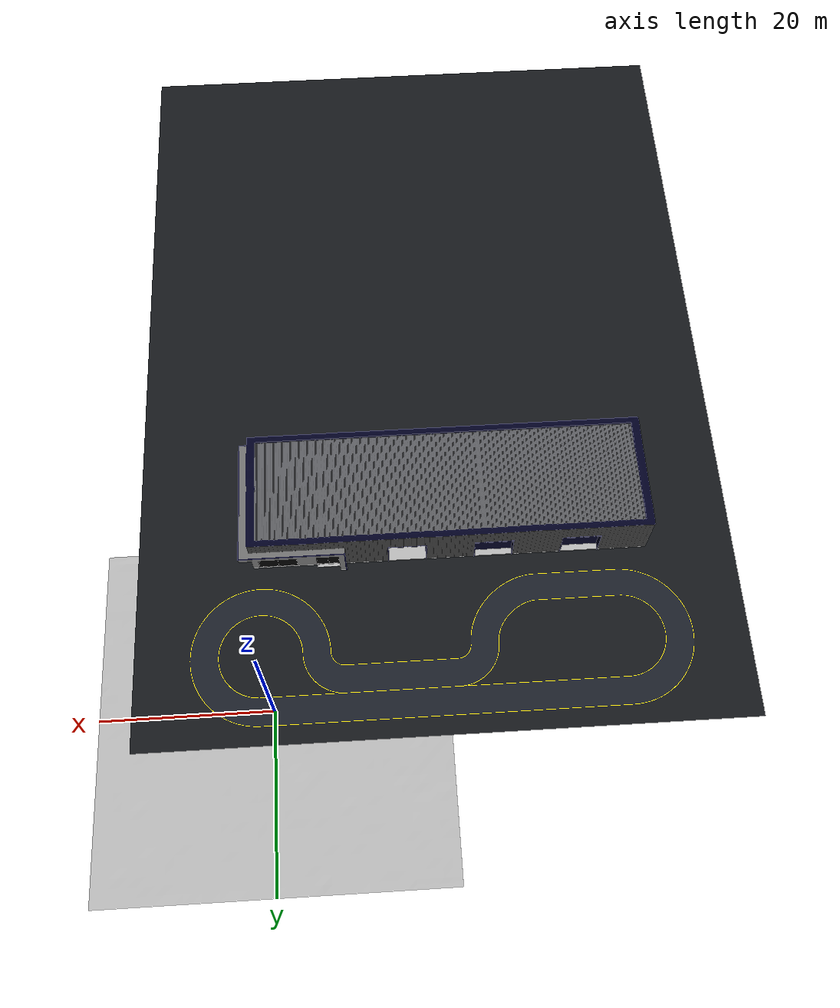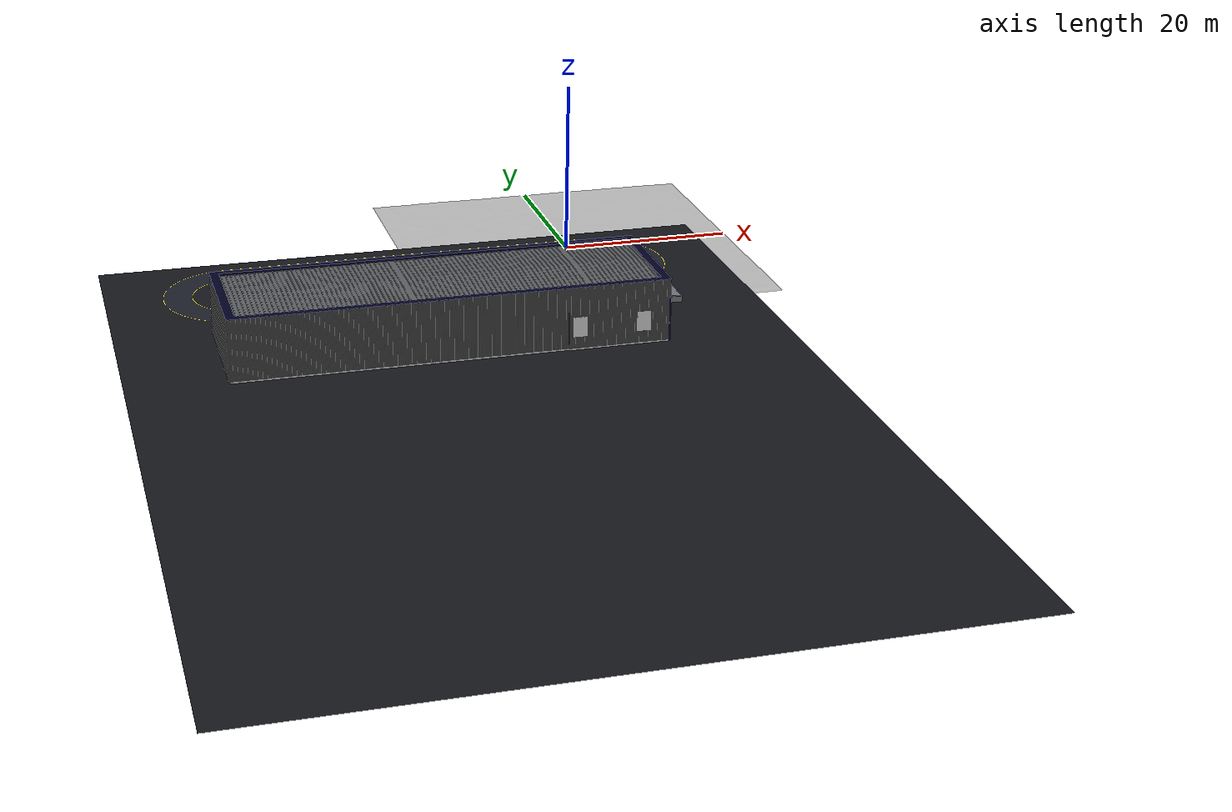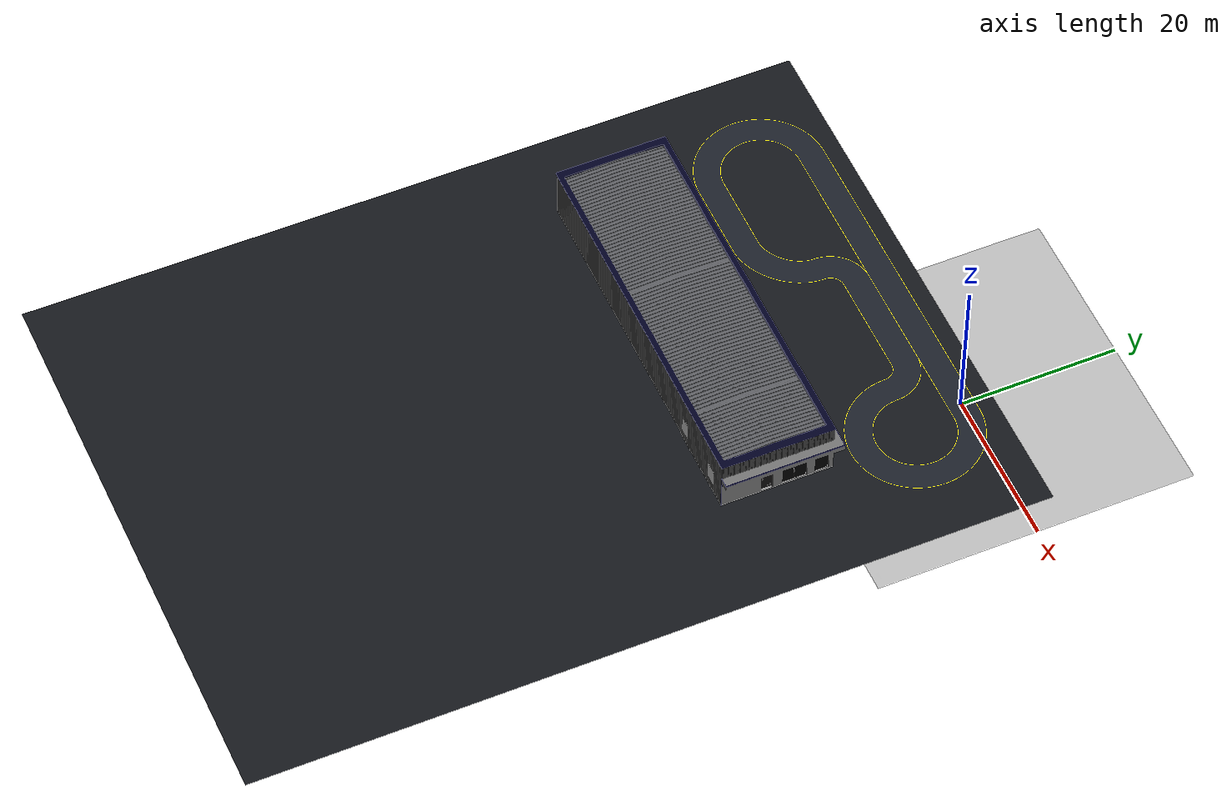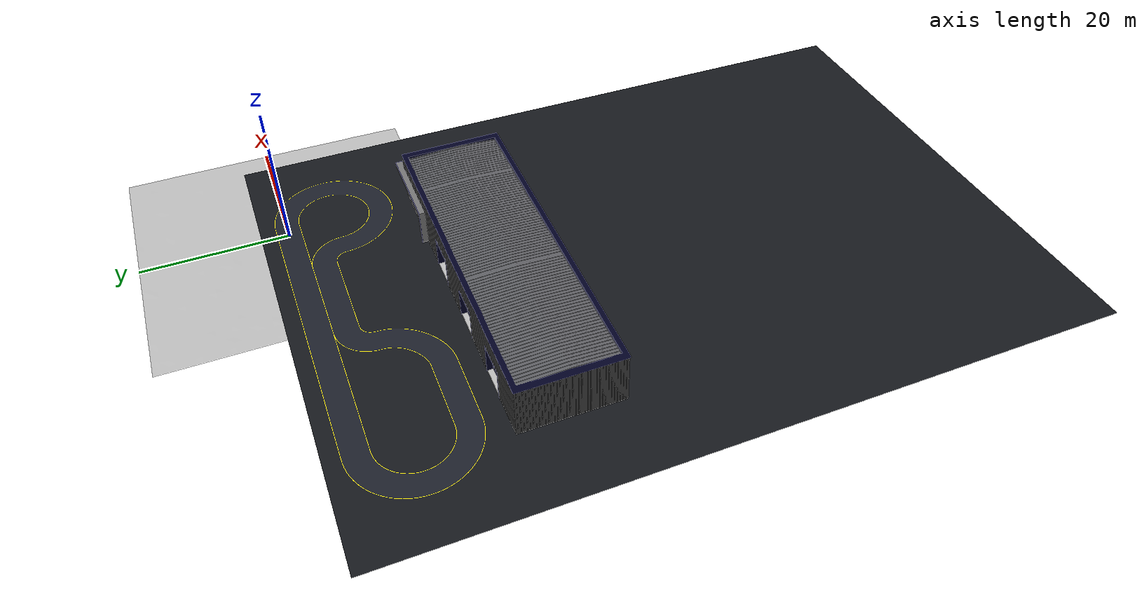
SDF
<sdf version='1.9'>
  <world name='highbay_testbed'>
    <physics name='1ms' type='ignored'>
      <max_step_size>0.001</max_step_size>
      <real_time_factor>1</real_time_factor>
      <real_time_update_rate>1000</real_time_update_rate>
    </physics>
    <plugin name='gz::sim::systems::Physics' filename='gz-sim-physics-system'/>
    <plugin name='gz::sim::systems::UserCommands' filename='gz-sim-user-commands-system'/>
    <plugin name='gz::sim::systems::SceneBroadcaster' filename='gz-sim-scene-broadcaster-system'/>
    <plugin name='gz::sim::systems::Sensors' filename='gz-sim-sensors-system'>
      <render_engine>ogre2</render_engine>
    </plugin>
    <plugin name='gz::sim::systems::Contact' filename='gz-sim-contact-system'/>
    <plugin name='gz::sim::systems::Imu' filename='gz-sim-imu-system'/>
    <spherical_coordinates>
      <surface_model>EARTH_WGS84</surface_model>
      <world_frame_orientation>ENU</world_frame_orientation>
      <latitude_deg>40.092857</latitude_deg>
      <longitude_deg>-88.235992</longitude_deg>
      <elevation>0</elevation>
      <heading_deg>0</heading_deg>
    </spherical_coordinates>
    <plugin
      filename="libignition-gazebo-navsat-system.so"
      name="ignition::gazebo::systems::NavSat">
    </plugin>
    <gravity>0 0 -9.8000000000000007</gravity>
    <magnetic_field>5.5644999999999998e-06 2.2875799999999999e-05 -4.2388400000000002e-05</magnetic_field>
    <atmosphere type='adiabatic'/>
    <scene>
      <ambient>0.4 0.4 0.4 1</ambient>
      <background>0.7 0.8 0.9 1</background>
      <shadows>true</shadows>
      <grid>false</grid>
      <origin_visual>false</origin_visual>
      <sky>false</sky>
      <fog>false</fog>
      <anisotropic_filtering>16</anisotropic_filtering>
    </scene>
    <include>
      <uri>model://highbay_track</uri>
      <pose>0 0 0.2 0 0 0</pose>
    </include>
    <include>
      <uri>model://highbay_building</uri>
      <pose>-20.00 -25.00 0.2 0 0 0</pose>
    </include>
    <include>
      <uri>model://grass</uri>
      <pose>0 0 0 0 0 0</pose>
    </include>
    <light name='sun' type='directional'>
      <pose>0 0 10 0 0 0</pose>
      <cast_shadows>true</cast_shadows>
      <intensity>1</intensity>
      <direction>-0.5 0.10000000000000001 -0.90000000000000002</direction>
      <diffuse>0.800000012 0.800000012 0.800000012 1</diffuse>
      <specular>0.200000003 0.200000003 0.200000003 1</specular>
      <attenuation>
        <range>1000</range>
        <linear>0.0099999997764825821</linear>
        <constant>0.89999997615814209</constant>
        <quadratic>0.0010000000474974513</quadratic>
      </attenuation>
      <spot>
        <inner_angle>0</inner_angle>
        <outer_angle>0</outer_angle>
        <falloff>0</falloff>
      </spot>
    </light>
  </world>
</sdf>

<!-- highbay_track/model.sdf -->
<sdf version="1.9">
  <model name="highbay_track">
    <static>true</static>

    <link name="link">
      <visual name="visual">
        <geometry>
          <mesh>
            <uri>model://highbay_track/meshes/highbay_track.dae</uri>
          </mesh>
        </geometry>
      </visual>

      <collision name="collision">
        <geometry>
          <mesh>
            <uri>model://highbay_track/meshes/highbay_track.dae</uri>
          </mesh>
        </geometry>
      </collision>
    </link>
  </model>
</sdf>

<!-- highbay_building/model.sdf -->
<sdf version="1.9">
  <model name="highbay_building">
    <static>true</static>

    <link name="link">
      <visual name="visual">
        <geometry>
          <mesh>
            <uri>model://highbay_building/meshes/highbay_building.dae</uri>
          </mesh>
        </geometry>
      </visual>

      <!-- Use box collision to avoid segfault from mesh submeshes with 0 normals -->
      <collision name="collision">
        <geometry>
          <box>
            <size>50 16 12</size>
          </box>
        </geometry>
      </collision>
    </link>
  </model>
</sdf>

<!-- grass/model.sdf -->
<sdf version="1.9">
  <model name="grass">
    <static>true</static>

    <link name="link">
      <visual name="visual">
        <geometry>
          <mesh>
            <uri>model://grass/meshes/grass.dae</uri>
          </mesh>
        </geometry>
      </visual>

      <collision name="collision">
        <geometry>
          <mesh>
            <uri>model://grass/meshes/grass.dae</uri>
          </mesh>
        </geometry>
      </collision>
    </link>
  </model>
</sdf>
